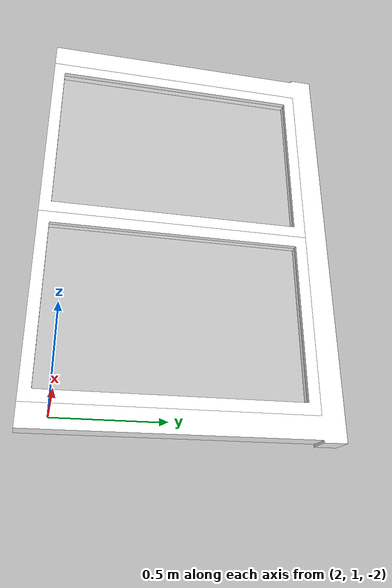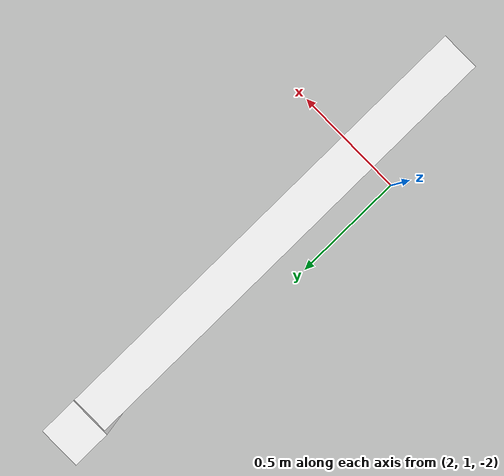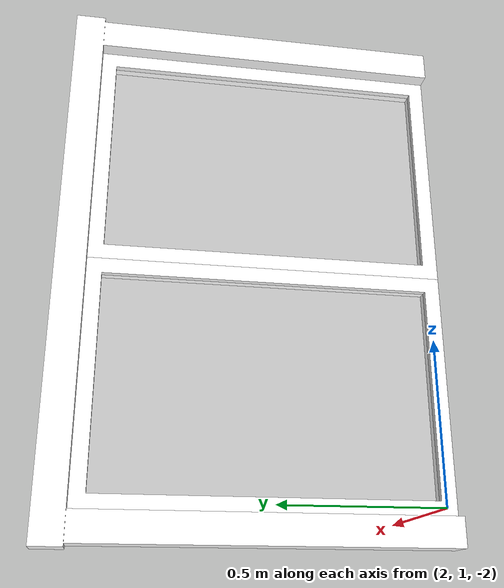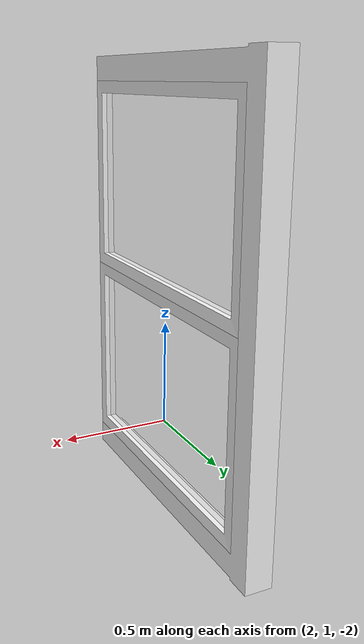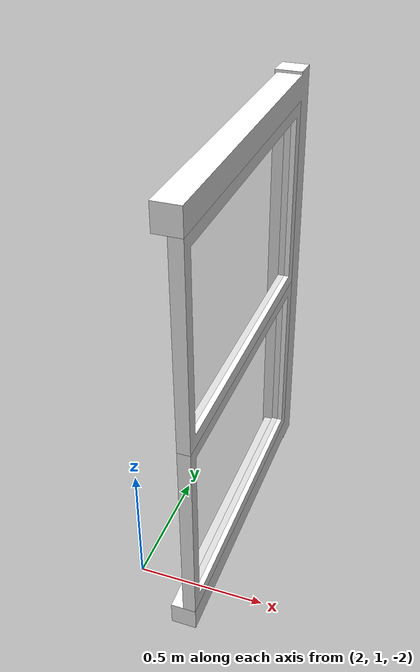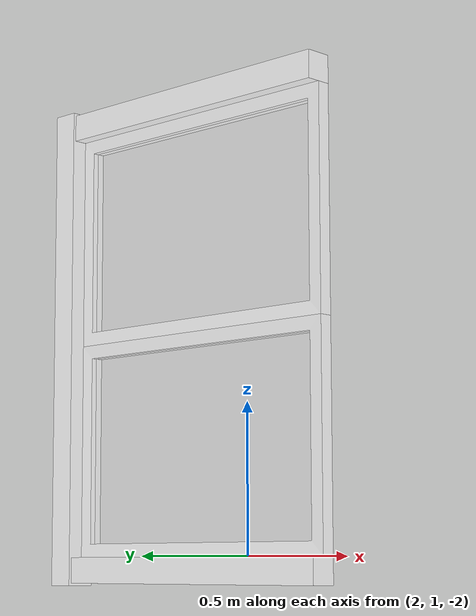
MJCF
<mujoco model="StandardWindow1(3)(2)_6f0f1d64">
  <compiler autolimits="true" boundmass="0.01" angle="radian"/>
  <default>
    <default class="/">
      <default class="__VISUAL_MJT__">
        <geom contype="0" conaffinity="0" group="0" mass="1e-08"/>
      </default>
      <default class="__STRUCTURAL_MJT__">
        <geom contype="8" conaffinity="15" group="4" friction="0.90000000000000002 0.90000000000000002 0.001" density="500" solref="0.025000000000000001 1" solimp="0.998 0.998 0.001"/>
      </default>
      <default class="__DYNAMIC_MJT__">
        <geom contype="1" conaffinity="15" group="4" friction="0.90000000000000002 0.90000000000000002 0.001" density="500" solref="0.025000000000000001 1" solimp="0.998 0.998 0.001"/>
      </default>
      <default class="__ARTICULABLE_DYNAMIC_MJT__">
        <geom contype="0" conaffinity="7" group="4" friction="0.90000000000000002 0.90000000000000002 0.001" density="500" solref="0.025000000000000001 1" solimp="0.998 0.998 0.001"/>
      </default>
    </default>
  </default>
  <asset>
    <material name="material_WhitePlastic" class="/" specular="0.5" shininess="0.5" rgba="1 1 1 1"/>
    <mesh name="StandardWindow1(3)(2)_6f0f1d64_StandardWindow1_(3)_39ea71ca" class="/" file="StandardWindow1(3)(2)_6f0f1d64_StandardWindow1_(3)_39ea71ca/StandardWindow1(3)(2)_6f0f1d64_StandardWindow1_(3)_39ea71ca.obj" scale="1 1 1" inertia="legacy"/>
    <material name="material_Glass_Detailed_Lit_Medium_Mat" class="/" specular="0.5" shininess="0.5" rgba="1 1 1 0.10000000000000001"/>
    <mesh name="StandardWindow1(3)(2)_6f0f1d64_WindowGlass_012dc59a" class="/" file="StandardWindow1(3)(2)_6f0f1d64_WindowGlass_012dc59a/StandardWindow1(3)(2)_6f0f1d64_WindowGlass_012dc59a.obj" scale="1 1 1" inertia="legacy"/>
    <mesh name="StandardWindow1(3)(2)_6f0f1d64_StandardWindow1_(3)_(2)_6f0f1d64" class="/" file="StandardWindow1(3)(2)_6f0f1d64_StandardWindow1_(3)_(2)_6f0f1d64/StandardWindow1(3)(2)_6f0f1d64_StandardWindow1_(3)_(2)_6f0f1d64.obj" scale="1 1 1" inertia="legacy"/>
    <mesh name="StandardWindow1(3)(2)_6f0f1d64_WindowTreatment1_57b62271" class="/" file="StandardWindow1(3)(2)_6f0f1d64_WindowTreatment1_57b62271/StandardWindow1(3)(2)_6f0f1d64_WindowTreatment1_57b62271.obj" scale="1 1 1" inertia="legacy"/>
  </asset>
  <worldbody>
    <body name="StandardWindow1(3)(2)_6f0f1d64">
      <body name="StandardWindow1(3)(2)_6f0f1d64_StandardWindow1_(3)_39ea71ca" pos="-0 0 0" quat="1 0 0 0">
        <geom name="StandardWindow1(3)(2)_6f0f1d64_StandardWindow1_(3)_39ea71ca" class="__VISUAL_MJT__" type="mesh" material="material_WhitePlastic" mesh="StandardWindow1(3)(2)_6f0f1d64_StandardWindow1_(3)_39ea71ca"/>
        <geom name="StandardWindow1(3)(2)_6f0f1d64_StandardWindow1_(3)_39ea71ca_PrimitiveCollider_0" class="__DYNAMIC_MJT__" type="box" size="0.098247908055782318 0.61812520027160645 0.89919251203536987" rgba="0 1 0 1" pos="2.3031179904937744 1.5200703144073486 -1.2015669345855713" quat="0 1 0 0"/>
      </body>
      <body name="StandardWindow1(3)(2)_6f0f1d64_WindowGlass_012dc59a" pos="-0 0 0" quat="1 0 0 0">
        <geom name="StandardWindow1(3)(2)_6f0f1d64_WindowGlass_012dc59a" class="__VISUAL_MJT__" type="mesh" material="material_Glass_Detailed_Lit_Medium_Mat" mesh="StandardWindow1(3)(2)_6f0f1d64_WindowGlass_012dc59a"/>
        <geom name="StandardWindow1(3)(2)_6f0f1d64_WindowGlass_012dc59a_PrimitiveCollider_0" class="__DYNAMIC_MJT__" type="box" size="0.098247908055782318 0.61812520027160645 0.89919251203536987" rgba="0 1 0 1" pos="2.3031179904937744 1.5200703144073486 -1.2015669345855713" quat="0 1 0 0"/>
      </body>
      <body name="StandardWindow1(3)(2)_6f0f1d64_StandardWindow1_(3)_(2)_6f0f1d64" pos="-0 0 0" quat="1 0 0 0">
        <geom name="StandardWindow1(3)(2)_6f0f1d64_StandardWindow1_(3)_(2)_6f0f1d64" class="__VISUAL_MJT__" type="mesh" material="material_WhitePlastic" mesh="StandardWindow1(3)(2)_6f0f1d64_StandardWindow1_(3)_(2)_6f0f1d64"/>
        <geom name="StandardWindow1(3)(2)_6f0f1d64_StandardWindow1_(3)_(2)_6f0f1d64_PrimitiveCollider_0" class="__DYNAMIC_MJT__" type="box" size="0.098247908055782318 0.61812520027160645 0.89919251203536987" rgba="0 1 0 1" pos="2.3031179904937744 1.5200703144073486 -1.2015669345855713" quat="0 1 0 0"/>
      </body>
      <body name="StandardWindow1(3)(2)_6f0f1d64_WindowTreatment1_57b62271" pos="-0 0 0" quat="1 0 0 0">
        <geom name="StandardWindow1(3)(2)_6f0f1d64_WindowTreatment1_57b62271" class="__VISUAL_MJT__" type="mesh" material="material_WhitePlastic" mesh="StandardWindow1(3)(2)_6f0f1d64_WindowTreatment1_57b62271"/>
        <geom name="StandardWindow1(3)(2)_6f0f1d64_WindowTreatment1_57b62271_PrimitiveCollider_0" class="__DYNAMIC_MJT__" type="box" size="0.098247908055782318 0.61812520027160645 0.89919251203536987" rgba="0 1 0 1" pos="2.3031179904937744 1.5200703144073486 -1.2015669345855713" quat="0 1 0 0"/>
      </body>
    </body>
  </worldbody>
</mujoco>
